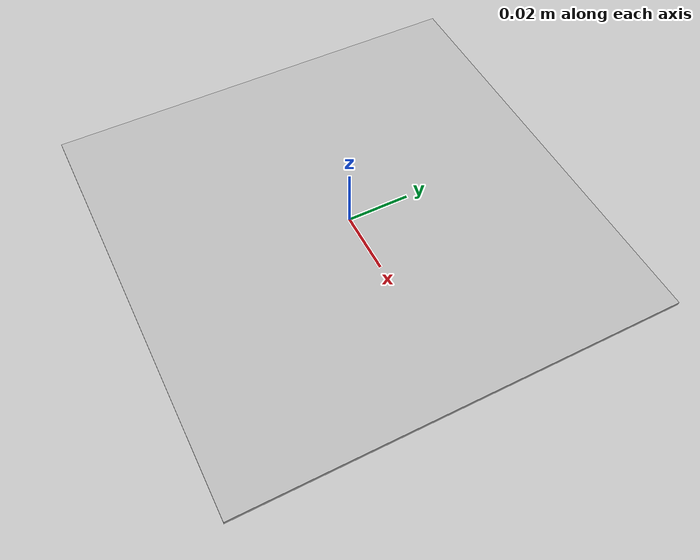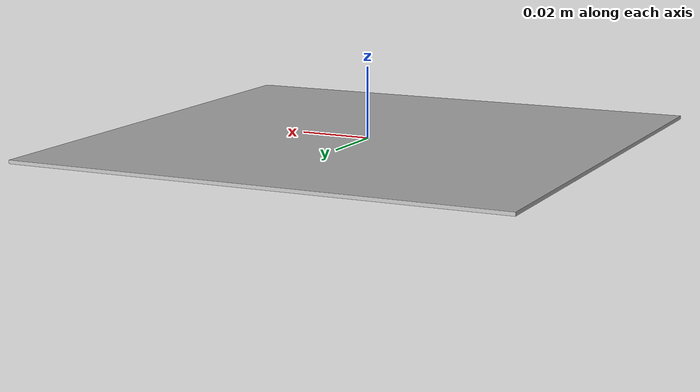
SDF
<?xml version="1.0" ?>
<sdf version="1.4">
  <model name="marker26_14cm_margin_1cm">
    <static>1</static>
    <link name="marker">
      <inertial>
        <mass>0.0</mass>
        <inertia>
          <ixx>0.000000</ixx>
          <ixy>0.000000</ixy>
          <ixz>0.000000</ixz>
          <iyy>0.000000</iyy>
          <iyz>0.000000</iyz>
          <izz>0.000000</izz>
        </inertia>
      </inertial>
      <visual name="visual">
        <geometry>
          <box>
            <size>0.14 0.14 0.001</size>
            <!-- SIZE OF THE MARKER + MARGIN -->
          </box>
        </geometry>
        <material>
          <script>
	    <uri>model://marker26_14cm_margin_1cm/material/scripts</uri>
	    <uri>model://marker26_14cm_margin_1cm/material/textures</uri>
            <name>Aruco/marker26_14cm_margin_1cm</name>
          </script>
        </material>
      </visual>
      <collision name="collision">
        <geometry>
          <box>
            <size>0.14 0.14 0.02</size>
            <!-- SIZE OF THE MARKER + MARGIN -->
          </box>
        </geometry>
        <surface>
          <bounce />
          <friction>
            <ode />
          </friction>
          <contact>
            <ode />
          </contact>
        </surface>
      </collision>
      <self_collide>1</self_collide>
      <kinematic>0</kinematic>
      <gravity>1</gravity>
    </link>
  </model>
</sdf>
